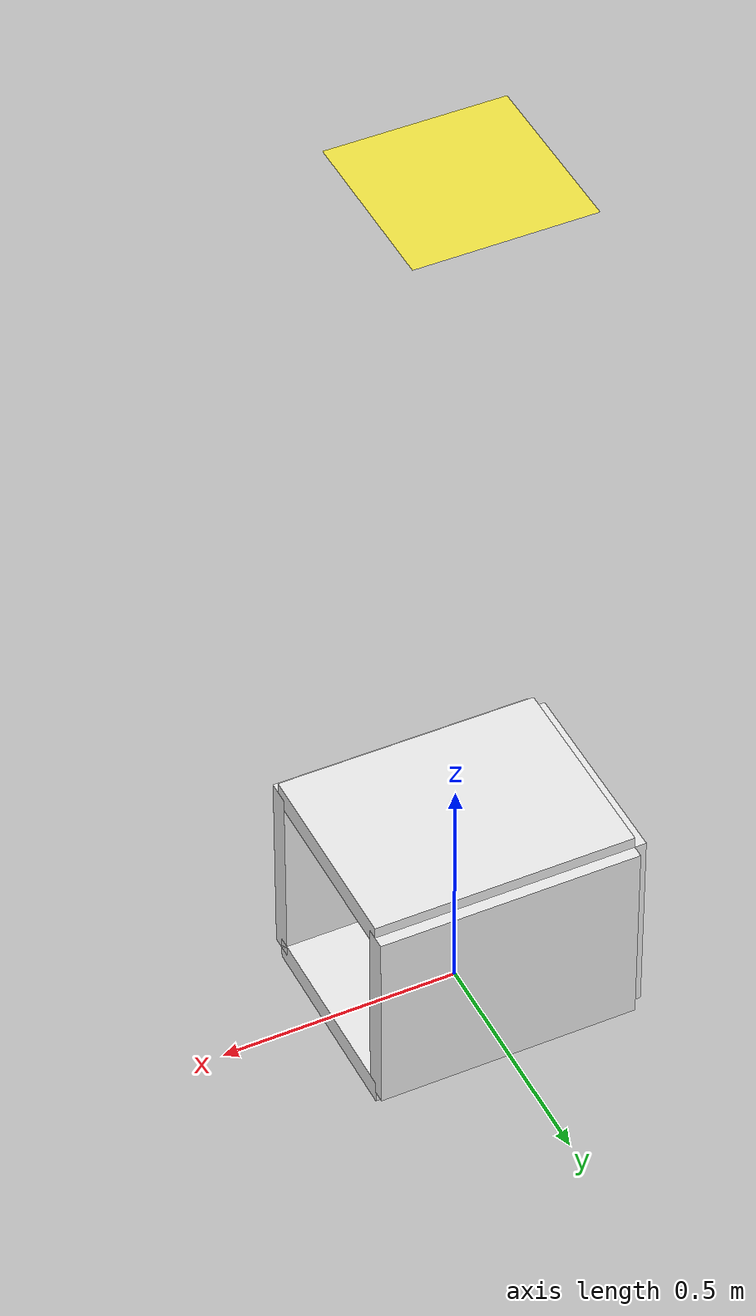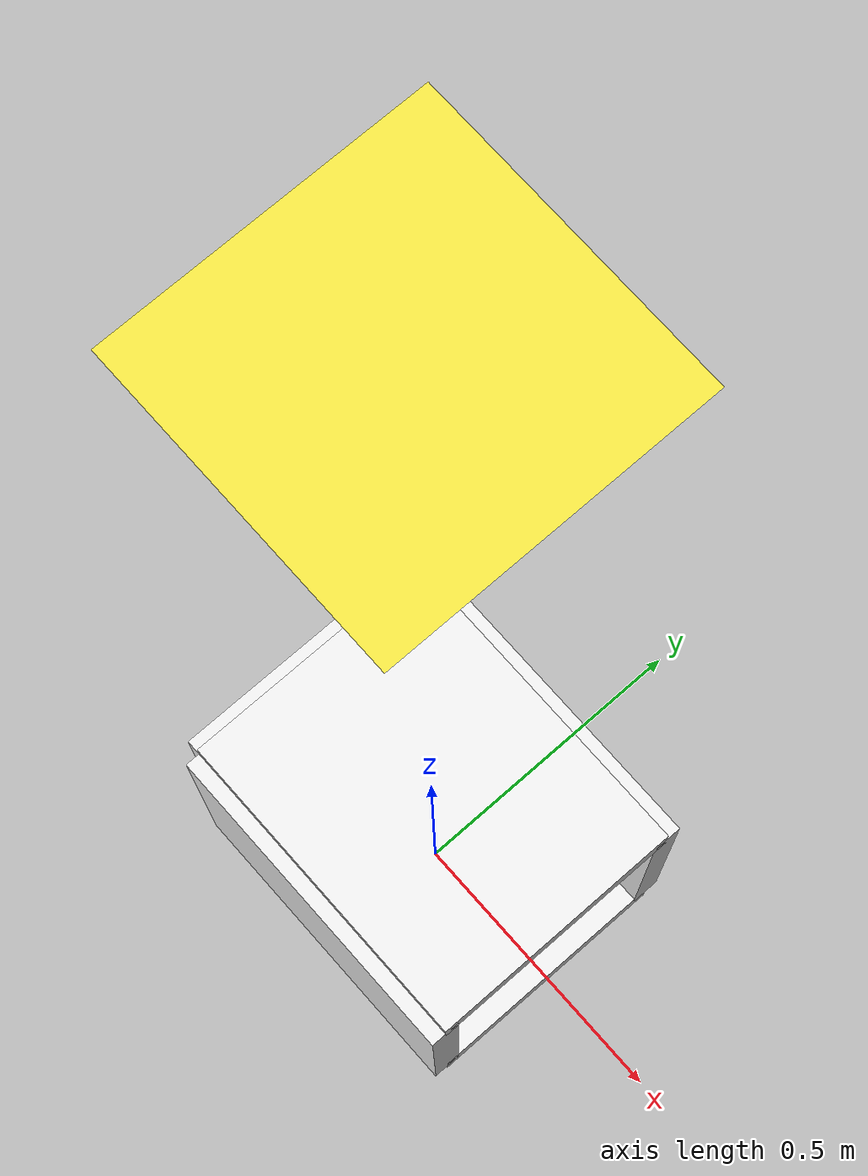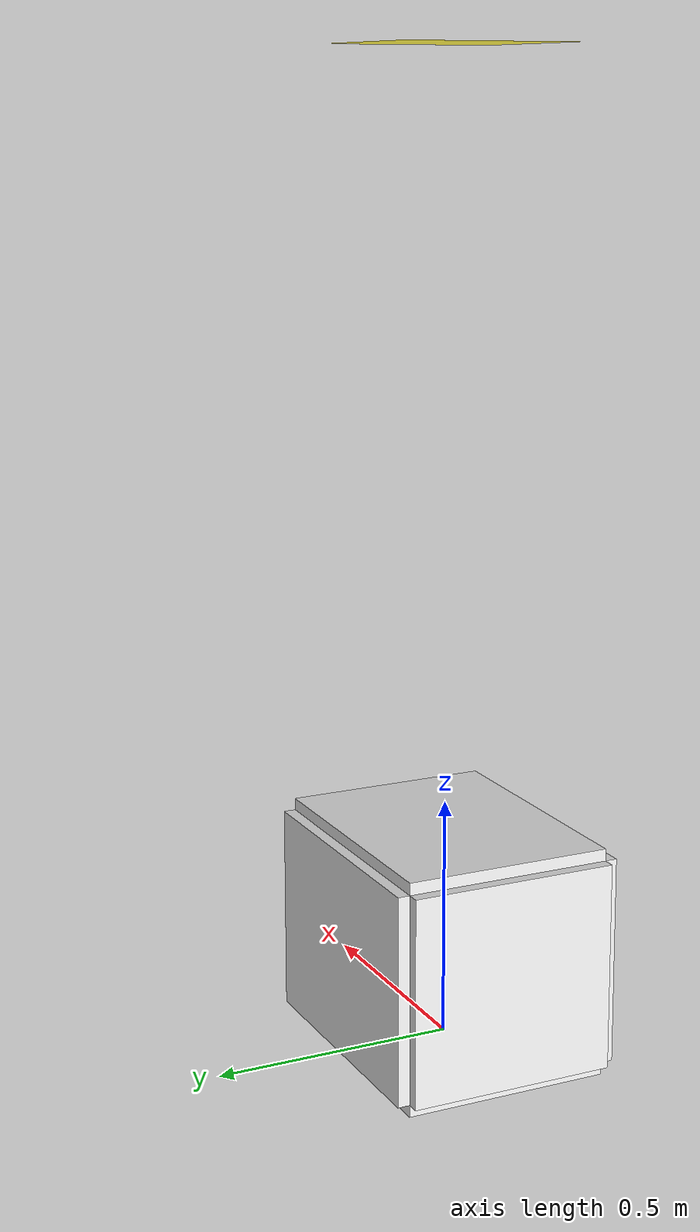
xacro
<?xml version="1.0"?>
<robot name="docking_station" xmlns:xacro="http://www.ros.org/wiki/xacro">
    <xacro:include filename="inertial_macros.xacro"/>

    <xacro:property name="rov_x"      value="0.45"/>
    <xacro:property name="rov_y"      value="0.33"/>
    <xacro:property name="rov_z"      value="0.24"/>

    <xacro:property name="beam_width" value="0.05"/>
    <xacro:property name="padding"    value="0.05"/>
    <xacro:property name="beam_mass"  value="0.05"/>

    <xacro:macro name="default_wall" params="namespace xyz rpy parent">
        <link name="${namespace}_link">
            <visual>
                <geometry>
                    <box size="${rov_x+2*padding} ${rov_y+2*padding} ${beam_width}"/>
                </geometry>
            </visual>

            <collision>
                <geometry>
                    <box size="${rov_x+2*padding} ${rov_y+2*padding} ${beam_width}"/>
                </geometry>
            </collision>

            <xacro:inertial_box mass="${beam_mass}" x="${rov_x+2*padding}" y="${rov_y+2*padding}" z="${beam_width}">
                <origin xyz="0 0 0" rpy="0 0 0"/>
            </xacro:inertial_box>
        </link>

        <gazebo reference="${namespace}_link">
            <mu1>1.0</mu1>
            <mu2>1.0</mu2>
            <material>Gazebo/White</material>
        </gazebo>

        <joint name="${namespace}_joint" type="fixed">
            <parent link="${parent}"/>
            <child link="${namespace}_link"/>
            <origin xyz="${xyz}" rpy="${rpy}"/>
        </joint>
    </xacro:macro>

    <link name="dock_base_footprint"/>

    <xacro:default_wall namespace="dock_base"  xyz="0 0 0" rpy="0 0 0" parent="dock_base_footprint"/>

    <link name="dock_back_link">
        <visual>
            <geometry>
                <box size="${beam_width} ${rov_y+2*padding} ${rov_y+2*padding}"/>
            </geometry>
        </visual>

        <collision>
            <geometry>
                <box size="${beam_width} ${rov_y+2*padding} ${rov_y+2*padding}"/>
            </geometry>
        </collision>

        <xacro:inertial_box mass="${beam_mass}" x="${beam_width}" y="${rov_y+2*padding}" z="${rov_y+2*padding}">
            <origin xyz="0 0 0" rpy="0 0 0"/>
        </xacro:inertial_box>
    </link>

    <gazebo reference="dock_back_link">
        <mu1>1.0</mu1>
        <mu2>1.0</mu2>
        <material>Gazebo/White</material>
    </gazebo>

    <joint name="dock_back_joint" type="fixed">
        <parent link="dock_base_link"/>
        <child link="dock_back_link"/>
        <origin xyz="${(-(rov_x + padding)/2) - beam_width/2} 0 ${((rov_y+padding)/2)+ 0.5*beam_width}" rpy="0 0 0" />
    </joint>

    <link name="aruco_link">
        <inertial>
            <mass value="0"/>
            <origin xyz="-0.019662 0.011643 0.5"/>
            <inertia
                ixx="0.01042" ixy="0.001177" ixz="-0.0008871"
                iyy="0.01045" iyz="0.0002226"
                izz="0.01817"/>
        </inertial>
        <visual>
            <origin xyz="0 0 0" rpy="0 0 0"/>
            <geometry>
                <box size="0.36 0.36 0"/>
            </geometry>
        </visual>
    </link>

    <gazebo reference="aruco_link">
        <material>arucomarker0/Image</material>
    </gazebo>

    <joint name="aruco_joint" type="fixed">
        <origin xyz="0 0 2" rpy="0 0 0"/>
        <parent link="dock_base_link"/>
        <child link="aruco_link"/>
    </joint>

    <xacro:default_wall namespace="left_wall"  xyz="0  ${((rov_y+padding)/2) + 0.5*beam_width} ${((rov_y+padding)/2) + 0.5*beam_width}" rpy="${pi/2} 0 0" parent="dock_base_link"/>
    <xacro:default_wall namespace="right_wall" xyz="0 -${((rov_y+padding)/2) + 0.5*beam_width}  ${((rov_y+padding)/2) + 0.5*beam_width}" rpy="${pi/2} 0 0" parent="dock_base_link"/>
    <xacro:default_wall namespace="roof"       xyz="0 0 ${(rov_y+padding) + beam_width}" rpy="0 0 0" parent="dock_base_link"/>

    <gazebo>
        <static>true</static>
    </gazebo>
</robot>

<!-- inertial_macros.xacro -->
<robot xmlns:xacro="http://www.ros.org/wiki/xacro" >

    <!--Sphere-->

    <xacro:macro name="inertial_sphere" params="mass radius *origin">
        <inertial>
            <xacro:insert_block name="origin"/>
            <mass value="${mass}" />
            <inertia ixx="${(2/5) * mass * (radius*radius)}" ixy="0.0" ixz="0.0"
                     iyy="${(2/5) * mass * (radius*radius)}" iyz="0.0"
                     izz="${(2/5) * mass * (radius*radius)}" />
        </inertial>
    </xacro:macro>

   <!--Box-->

    <xacro:macro name="inertial_box" params="mass x y z *origin">
        <inertial>
            <xacro:insert_block name="origin"/>
            <mass value="${mass}" />
            <inertia ixx="${(1/12) * mass * (y*y+z*z)}" ixy="0.0" ixz="0.0"
                     iyy="${(1/12) * mass * (x*x+z*z)}" iyz="0.0"
                     izz="${(1/12) * mass * (x*x+y*y)}" />
        </inertial>
    </xacro:macro>

   <!--Cylinder-->

    <xacro:macro name="inertial_cylinder" params="mass length radius *origin">
        <inertial>
            <xacro:insert_block name="origin"/>
            <mass value="${mass}" />
            <inertia ixx="${(1/12) * mass * (3*radius*radius + length*length)}" ixy="0.0" ixz="0.0"
                     iyy="${(1/12) * mass * (3*radius*radius + length*length)}" iyz="0.0"
                     izz="${(1/2) * mass * (radius*radius)}" />
        </inertial>
    </xacro:macro>

</robot>
